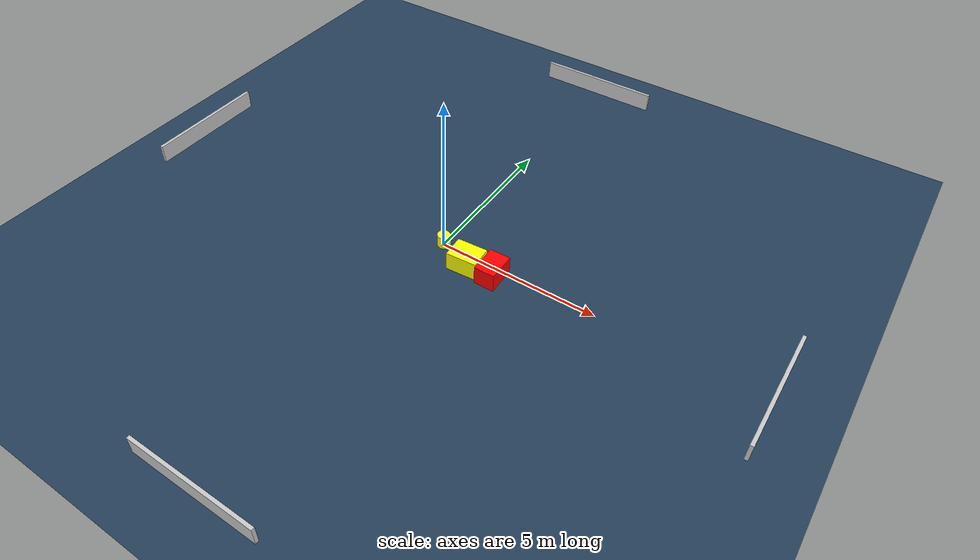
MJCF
<?xml version="1.0" ?>
<mujoco model="generated_environment">
  <option timestep="0.01" integrator="RK4" cone="elliptic"/>
  <default>
    <geom density="1"/>
  </default>
  <asset>
    <texture builtin="gradient" height="3072" name="skybox" rgb1="0.3 0.5 0.7" rgb2="0 0 0" type="skybox" width="512"/>
    <texture builtin="checker" height="300" name="groundplane" rgb1="0.2 0.3 0.4" rgb2="0.1 0.2 0.3" type="2d" width="300"/>
    <material name="groundplane" reflectance="0.2" texrepeat="5 5" texture="groundplane"/>
  </asset>
  <worldbody>
    <light dir="0 0 -1" directional="true" pos="0 0 1.5"/>
    <geom condim="3" friction="0.5 0.005 0.001" material="groundplane" name="floor" pos="0 0 0" size="0 0 0.05" type="plane"/>
    <body name="walls">
      <geom name="wall_1" condim="4" pos="-10.0 0.0 0.3" rgba="0.800000011920929 0.800000011920929 0.800000011920929 1.0" size="0.05 2.0 0.3" type="box"/>
      <geom name="wall_2" condim="4" pos="10.0 0.0 0.3" rgba="0.800000011920929 0.800000011920929 0.800000011920929 1.0" size="0.05 2.0 0.3" type="box"/>
      <geom name="wall_3" condim="4" pos="0.0 -10.0 0.3" rgba="0.800000011920929 0.800000011920929 0.800000011920929 1.0" size="2.0 0.05 0.3" type="box"/>
      <geom name="wall_4" condim="4" pos="0.0 10.0 0.3" rgba="0.800000011920929 0.800000011920929 0.800000011920929 1.0" size="2.0 0.05 0.3" type="box"/>
    </body>
    <body name="robot">
      <joint name="joint_x" type="slide" pos="0 0 0" axis="1 0 0"/>
      <joint name="joint_y" type="slide" pos="0 0 0" axis="0 1 0"/>
      <geom name="robot" type="cylinder" pos="0.0 0.0 0.2" size="0.2 0.2 0.0" mass="5.0" friction="1.0 0.005 0.0001" condim="4" rgba="1.0 1.0 0.0 1.0"/>
    </body>
    <body name="obstacle_1_movable">
      <geom name="obstacle_1_movable" condim="4" pos="1.0699330239722529 -0.3969758195677565 0.3" euler="0 0 3.8503601262567377" friction="0.0 0.005 0.001" rgba="1.0 1.0 0.0 1.0" size="0.47247721732431375 0.35588114405858073 0.3" type="box" mass="0.1"/>
      <joint type="free"/>
    </body>
    <body name="obstacle_2_static">
      <geom name="obstacle_2_static" condim="4" pos="1.9075336317118208 -0.35702862457015305 0.3" euler="0 0 180.47005894549028" friction="0.0 0.005 0.001" rgba="1.0 0.0 0.0 1.0" size="0.31893331754457144 0.44731087728384755 0.3" type="box"/>
    </body>
  </worldbody>
  <actuator>
    <motor name="actuator_x" joint="joint_x" gear="1" ctrlrange="-1 1"/>
    <motor name="actuator_y" joint="joint_y" gear="1" ctrlrange="-1 1"/>
  </actuator>
</mujoco>
